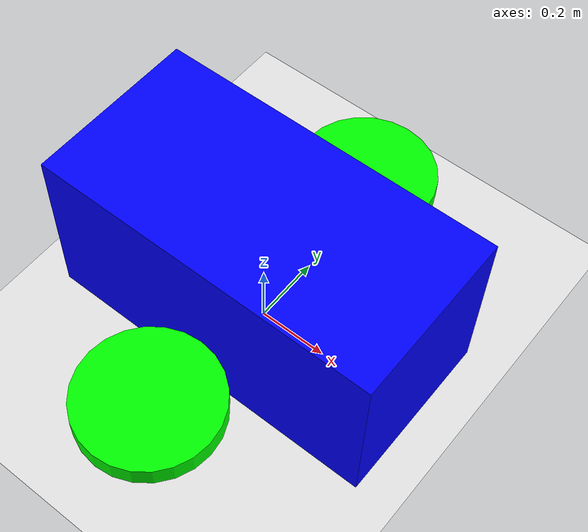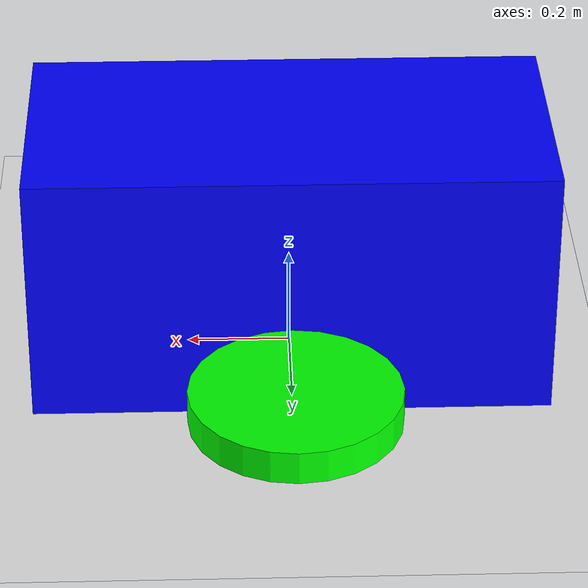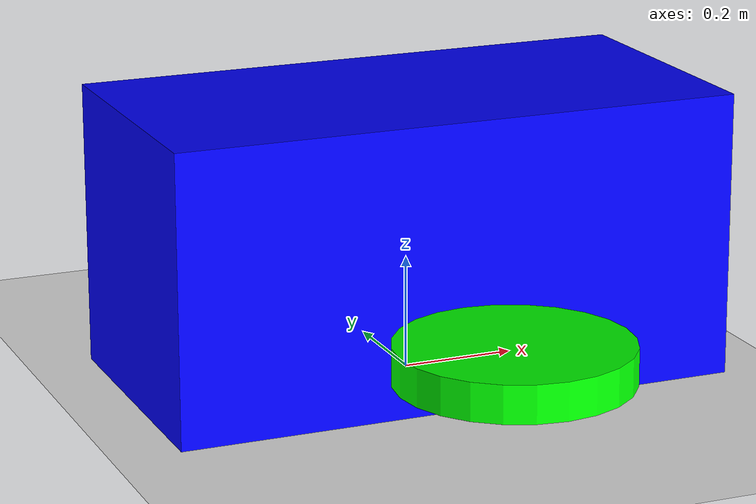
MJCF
<mujoco model="pengu">

  <worldbody>
    <light diffuse=".5 .5 .5" pos="0 0 3" dir="0 0 -1"/>
    <geom type="plane" size="5 5 0.1" rgba=".9 .9 .9 1"/>

    <body name="body">
        <joint type="free"/>>
        <site name="marker" pos="0 0 0" size="0.05"/>
        <geom size="0.5 0.25 0.25" type="box" pos="0 0 0.25" rgba="0 0 1 1" mass="0.01"/>

        <body name="left_wing" pos="0 0.45 0.15" euler="0 0 90">
          <joint name="left_link" type="hinge" pos="-0.2 0 0" axis="0 1 0" range="-45 45"/>
          <geom type="cylinder" size="0.2 0.0325" rgba="0 1 0 1" mass="1"/>
        </body>

        <body name="right_wing" pos="0 -0.45 0.15" euler="0 0 90">
          <joint name="right_link" type="hinge" pos="0.2 0 0" axis="0 1 0" range="-45 45"/>
          <geom type="cylinder" size="0.2 0.0325" rgba="0 1 0 1" mass="1"/>
        </body>
    </body>
  </worldbody>

  <actuator>
    <motor name="left_wing_motor" joint="left_link" gear="10" ctrllimited="true" ctrlrange="-5 5"/>
    <motor name="right_wing_motor" joint="right_link" gear="10" ctrllimited="true" ctrlrange="-5 5"/>
  </actuator>

  <sensor>
    <framepos objtype="site" objname="marker" />
  </sensor>
</mujoco>
